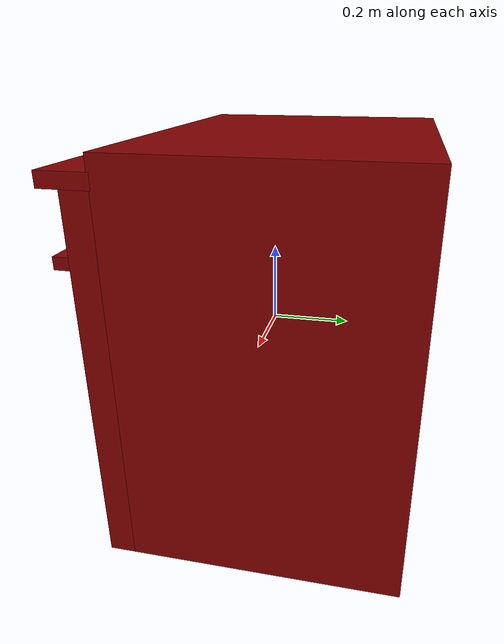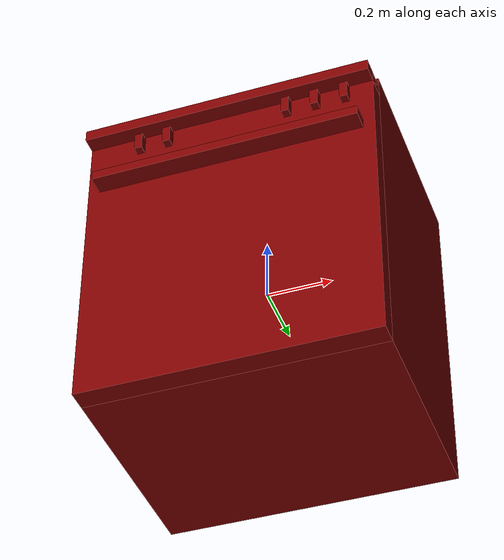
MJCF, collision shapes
<mujoco model="model">
  <compiler angle="radian"/>
  <asset>
    <texture file="visuals/material_0.png" name="tex-model" type="2d"/>
    <texture type="2d" name="image0" file="visuals/image0.png"/>
    <texture type="2d" name="image4" file="visuals/image4.png"/>
    <material name="model" reflectance="0.5" texrepeat="1 1" texture="tex-model" texuniform="false"/>
    <material name="TX_Stove_Small" texture="image0" specular="0.5" shininess="0.25"/>
    <material name="TX_Stove_Small_Glass" texture="image4" specular="0.5" shininess="0.25"/>
    <mesh file="visuals/model_0.obj" name="model_0_vis" scale="1 1 1"/>
    <mesh file="visuals/model_1.obj" name="model_1_vis" scale="1 1 1"/>
    <mesh file="visuals/knob_rear_right_0.obj" name="knob_rear_right_0_vis" scale="1 1 1"/>
    <mesh file="visuals/knob_dummy_0.obj" name="knob_dummy_0_vis" scale="1 1 1"/>
    <mesh file="visuals/knob_front_left_0.obj" name="knob_front_left_0_vis" scale="1 1 1"/>
    <mesh file="visuals/knob_front_right_0.obj" name="knob_front_right_0_vis" scale="1 1 1"/>
    <mesh file="visuals/knob_rear_left_0.obj" name="knob_rear_left_0_vis" scale="1 1 1"/>
  </asset>
  <default>
    <default class="visual">
      <geom conaffinity="0" contype="0" group="1" type="mesh"/>
    </default>
    <default class="collision">
      <geom group="0" rgba="0.5 0 0 0.5"/>
    </default>
    <default class="region">
      <geom group="1" conaffinity="0" contype="0" rgba="0 1 0 0"/>
    </default>
  </default>
  <worldbody>
    <body>
      <body name="object">
        <geom solimp="0.998 0.998 0.001" solref="0.001 1" density="100" friction="0.95 0.3 0.1" type="mesh" mesh="model_0_vis" material="TX_Stove_Small" class="visual"/>
        <geom solimp="0.998 0.998 0.001" solref="0.001 1" density="100" friction="0.95 0.3 0.1" type="mesh" mesh="model_1_vis" material="TX_Stove_Small_Glass" class="visual"/>
        <!-- Burners -->
        <site name="burner_on_front_left" pos="-0.237 -0.092 0.466" size="0.075 0.005" rgba="0.3 0.4 1.0 0.5" type="cylinder"/>
        <site name="burner_on_front_right" pos="0.246 -0.102 0.454" size="0.05 0.005" rgba="0.3 0.4 1.0 0.5" type="cylinder"/>
        <site name="burner_on_rear_left" pos="-0.242 0.194 0.46" size="0.055 0.005" rgba="0.3 0.4 1 0.5" type="cylinder"/>
        <site name="burner_on_rear_right" pos="0.244 0.193 0.46" size="0.055 0.005" rgba="0.3 0.4 1 0.5" type="cylinder"/>
        <site name="burner_front_left_place_site" pos="-0.237 -0.092 0.50" size="0.075 0.001" rgba="0 0 1 0" type="cylinder"/>
        <site name="burner_front_right_place_site" pos="0.246 -0.102 0.50" size="0.05 0.001" rgba="0 0 1 0" type="cylinder"/>
        <site name="burner_rear_left_place_site" pos="-0.242 0.194 0.50" size="0.055 0.001" rgba="0 0 1 0" type="cylinder"/>
        <site name="burner_rear_right_place_site" pos="0.244 0.193 0.50" size="0.055 0.001" rgba="0 0 1 0" type="cylinder"/>
        <!-- Main -->
        <geom class="collision" type="box" pos="0 0.06 0" size="0.445 0.335 0.5"/>
        <!-- Tiny slab above oven door -->
        <geom class="collision" type="box" pos="0 -0.33 0.445" size="0.445 0.06 0.018"/>
        <!-- Oven Door (not accurate enough to be turned into a hinge) -->
        <geom class="collision" type="box" pos="0 -0.307 -0.02" size="0.445 0.033 0.48"/>
        <!-- Oven Handle -->
        <geom class="collision" type="box" pos="0 -0.37 0.26" size="0.41 0.03 0.015"/>
        <body name="knob_rear_right">
          <joint axis="0 1 0" name="knob_rear_right_joint" damping="1" pos="0.275 -0.34 0.377"/>
          <geom solimp="0.998 0.998 0.001" solref="0.001 1" density="100" friction="0.95 0.3 0.1" type="mesh" mesh="knob_rear_right_0_vis" material="TX_Stove_Small" class="visual"/>
          <geom class="collision" type="box" pos="0.275 -0.3685 0.377" size="0.012 0.0135 0.028" friction="100 0.001 0.0001" solref="0.001 5" solimp="0.99 0.999 0.001 0.5 2" name="knob_rear_right_main"/>
        </body>
        <body name="knob_dummy">
          <joint axis="0 1 0" name="knob_dummy_joint" damping="1" pos="0.186 -0.34 0.377"/>
          <geom solimp="0.998 0.998 0.001" solref="0.001 1" density="100" friction="0.95 0.3 0.1" type="mesh" mesh="knob_dummy_0_vis" material="TX_Stove_Small" class="visual"/>
          <geom class="collision" type="box" pos="0.186 -0.3685 0.377" size="0.012 0.0135 0.028" friction="100 0.001 0.0001" solref="0.001 5" solimp="0.99 0.999 0.001 0.5 2" name="knob_dummy_main"/>
        </body>
        <body name="knob_front_left">
          <joint axis="0 1 0" name="knob_front_left_joint" damping="1" pos="-0.275 -0.34 0.377"/>
          <geom solimp="0.998 0.998 0.001" solref="0.001 1" density="100" friction="0.95 0.3 0.1" type="mesh" mesh="knob_front_left_0_vis" material="TX_Stove_Small" class="visual"/>
          <geom class="collision" type="box" pos="-0.275 -0.3685 0.377" size="0.012 0.0135 0.028" friction="100 0.001 0.0001" solref="0.001 5" solimp="0.99 0.999 0.001 0.5 2" name="knob_front_left_main"/>
        </body>
        <body name="knob_front_right">
          <joint axis="0 1 0" name="knob_front_right_joint" damping="1" pos="0.365 -0.34 0.377"/>
          <geom solimp="0.998 0.998 0.001" solref="0.001 1" density="100" friction="0.95 0.3 0.1" type="mesh" mesh="knob_front_right_0_vis" material="TX_Stove_Small" class="visual"/>
          <geom class="collision" type="box" pos="0.365 -0.3685 0.377" size="0.012 0.0135 0.028" friction="100 0.001 0.0001" solref="0.001 5" solimp="0.99 0.999 0.001 0.5 2" name="knob_front_right_main"/>
        </body>
        <body name="knob_rear_left">
          <joint axis="0 1 0" name="knob_rear_left_joint" damping="1" pos="-0.186 -0.34 0.377"/>
          <geom solimp="0.998 0.998 0.001" solref="0.001 1" density="100" friction="0.95 0.3 0.1" type="mesh" mesh="knob_rear_left_0_vis" material="TX_Stove_Small" class="visual"/>
          <geom class="collision" type="box" pos="-0.186 -0.3685 0.377" size="0.012 0.0135 0.028" friction="100 0.001 0.0001" solref="0.001 5" solimp="0.99 0.999 0.001 0.5 2" name="knob_rear_left_main"/>
        </body>
        <!-- exterior bounding box points -->
        <geom class="region" name="reg_main" type="box" pos="0.0 0.027499999999999997 -0.01874999999999999" size="0.445 0.36750000000000005 0.47875"/>
      </body>
    </body>
  </worldbody>
</mujoco>
